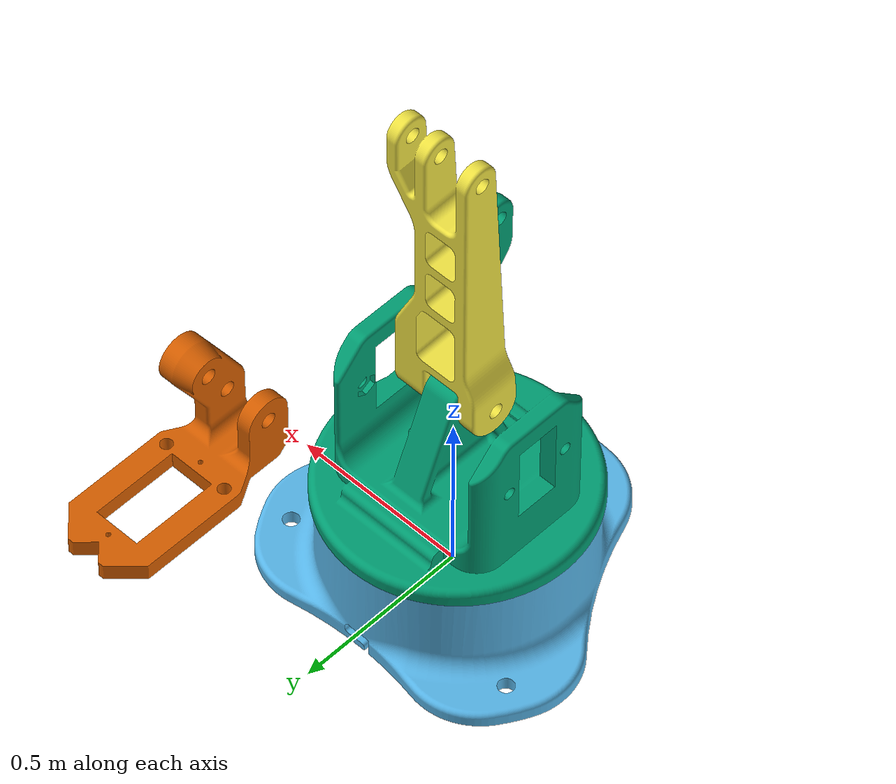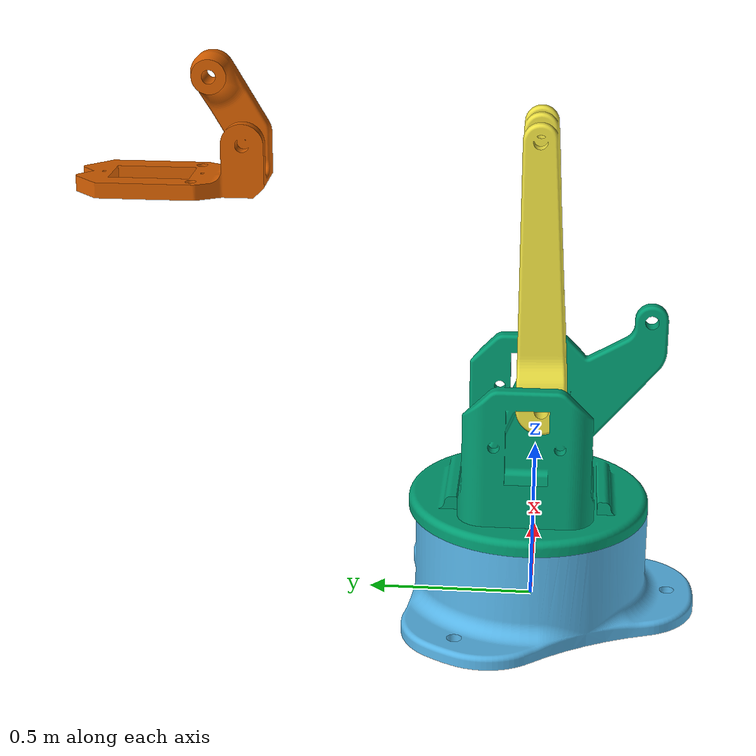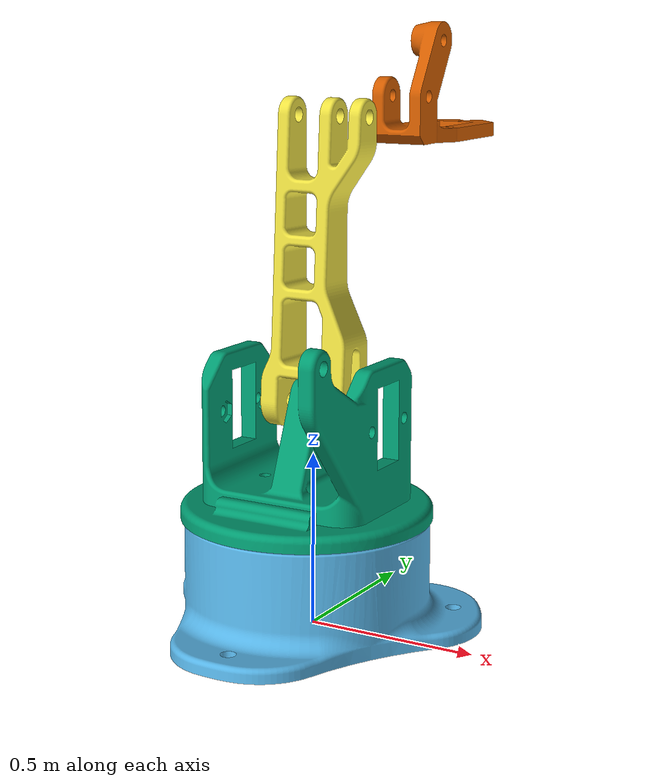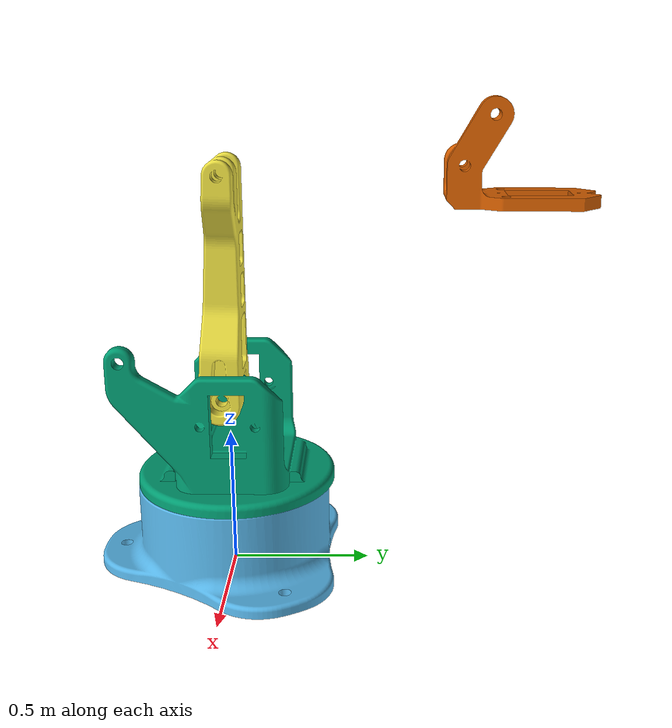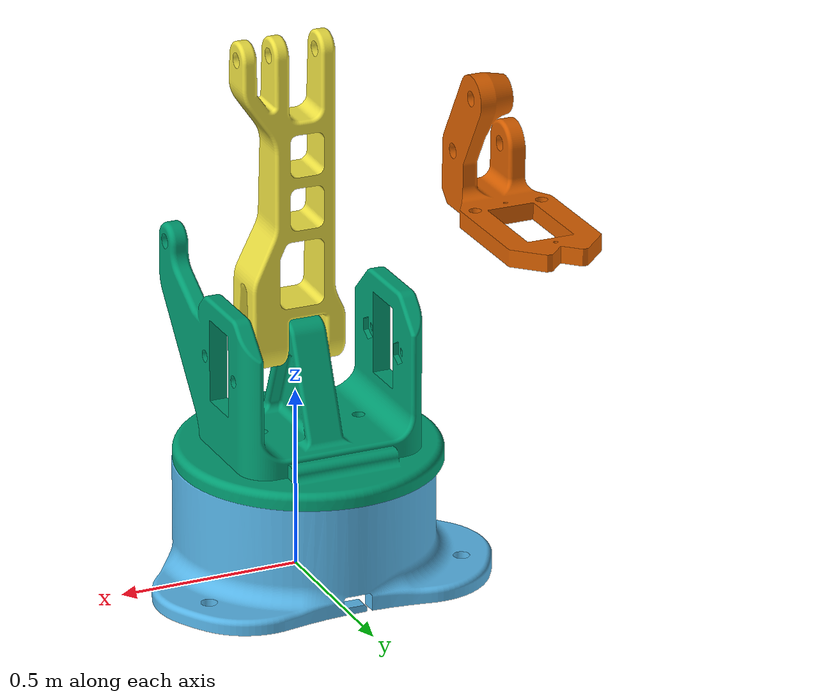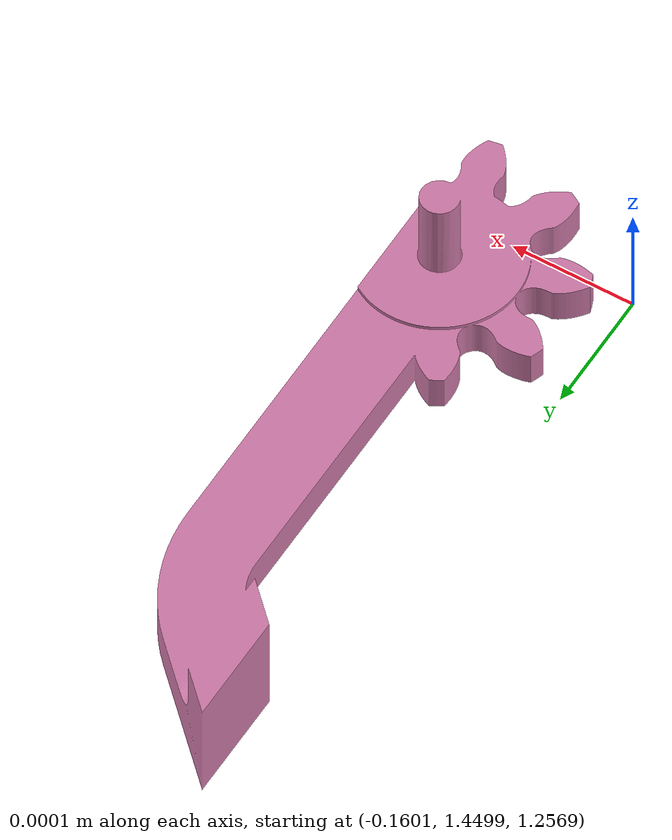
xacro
<?xml version="1.0"?>
<robot xmlns:xacro="http://www.ros.org/wiki/xacro" name="arduinobot">

    <!-- Useful Variables (Properties) -->
    <xacro:property name="PI" value="3.14159265359" />
    <xacro:property name="effort" value="30" />
    <xacro:property name="velocity" value="10" />

    <xacro:macro name="default_inertial" params="mass">
        <inertial>
            <mass value="${mass}"/>
            <inertia ixx="1.0" ixy="0.0" ixz="0.0" iyy="1.0" iyz="0.0" izz="1.0"/>
        </inertial>
    </xacro:macro>

    <xacro:macro name="default_transmission" params="number">
        <transmission name = "transmission_${number}" >
            <type>
                transmission_interface/SimpleTransmission
            </type>
            <joint name="joint_${number}">
                <hardwareInterface>hardware_interface/PositionJointInterface</hardwareInterface>
            </joint>
            <actuator name="motor_${number}">
                <hardwareInterface>hardware_interface/PositionJointInterface</hardwareInterface>
                <mechanicalReduction>1</mechanicalReduction>
            </actuator>
        </transmission>
    </xacro:macro>

    <!-- Links -->
    <link name="world"/>

    <!-- Link 1 -->
    <link name="base_link">
        <xacro:default_inertial mass = "1.0"/>
        <visual>
            <origin rpy="0 0 0" xyz="-0.5 -0.5 0"/>
            <geometry>
                <mesh filename="package://arduinobot_description/mesh/basement.STL" scale="0.01 0.01 0.01"/>
            </geometry>
        </visual>
    </link>

    <!-- Link 2 -->
    <link name="base_plate">
        <xacro:default_inertial mass = "0.1"/>
        <visual>
            <origin rpy="0 0 0" xyz="-0.39 -0.39 -0.56"/>
            <geometry>
                <mesh filename="package://arduinobot_description/mesh/base_plate.STL" scale="0.01 0.01 0.01"/>
            </geometry>
        </visual>

        <collision>
            <origin rpy="0 0 0" xyz="-0.39 -0.39 -0.56"/>
            <geometry>
                <mesh filename="package://arduinobot_description/mesh/base_plate.STL" scale="0.01 0.01 0.01"/>
            </geometry>
        </collision>
    </link>

    <!-- Link 3 -->
    <link name="forward_drive_arm">
        <xacro:default_inertial mass = "0.1"/>
        <visual>
            <origin rpy="0 -${PI/2} ${PI/2}" xyz="0.19 0.06 -0.08"/>
            <geometry>
                <mesh filename="package://arduinobot_description/mesh/forward_drive_arm.STL" scale="0.01 0.01 0.01"/>
            </geometry>
        </visual>

        <collision>
            <origin rpy="0 -${PI/2} ${PI/2}" xyz="0.19 0.06 -0.08"/>
            <geometry>
                <mesh filename="package://arduinobot_description/mesh/forward_drive_arm.STL" scale="0.01 0.01 0.01"/>
            </geometry>
        </collision>
    </link>

    <!-- Link 4 -->
    <link name="horizontal_arm">
        <xacro:default_inertial mass = "0.1"/>
        <visual>
            <origin rpy="${PI/2} 0 ${PI/2}" xyz="-0.03 -0.4 -0.06"/>
            <geometry>
                <mesh filename="package://arduinobot_description/mesh/horizontal_arm.STL" scale="0.01 0.01 0.01"/>
            </geometry>
        </visual>

        <collision>
            <origin rpy="${PI/2} 0 ${PI/2}" xyz="-0.03 -0.4 -0.06"/>
            <geometry>
                <mesh filename="package://arduinobot_description/mesh/horizontal_arm.STL" scale="0.01 0.01 0.01"/>
            </geometry>
        </collision>
    </link>

    <!-- Link 5 -->
    <link name="claw_support">
        <xacro:default_inertial mass = "0.05"/>
        <visual>
            <origin rpy="0 0 ${PI/2}" xyz="0 -0.05 -0.15"/>
            <geometry>
                <mesh filename="package://arduinobot_description/mesh/claw_support.STL" scale="0.01 0.01 0.01"/>
            </geometry>
        </visual>

        <collision>
            <origin rpy="0 0 ${PI/2}" xyz="0 -0.05 -0.15"/>
            <geometry>
                <mesh filename="package://arduinobot_description/mesh/claw_support.STL" scale="0.01 0.01 0.01"/>
            </geometry>
        </collision>
    </link>

    <!-- Link 6 -->
    <link name="gripper_right">
        <xacro:default_inertial mass = "0.01"/>
        <visual>
            <origin rpy="0 0 -${PI/2}" xyz="-0.1 0.5 -0.1"/>
            <geometry>
                <mesh filename="package://arduinobot_description/mesh/right_finger.STL" scale="0.01 0.01 0.01"/>
            </geometry>
        </visual>

        <collision>
            <origin rpy="0 0 -${PI/2}" xyz="-0.1 0.5 -0.1"/>
            <geometry>
                <mesh filename="package://arduinobot_description/mesh/right_finger.STL" scale="0.01 0.01 0.01"/>
            </geometry>
        </collision>
    </link>

    <!-- Link 7 -->
    <link name="gripper_left">
        <xacro:default_inertial mass = "0.01"/>
        <visual>
            <origin rpy="0 0 -${PI/2}" xyz="-0.04 0.5 -0.1"/>
            <geometry>
                <mesh filename="package://arduinobot_description/mesh/left_finger.STL" scale="0.01 0.01 0.01"/>
            </geometry>
        </visual>

        <collision>
            <origin rpy="0 0 -${PI/2}" xyz="-0.04 0.5 -0.1"/>
            <geometry>
                <mesh filename="package://arduinobot_description/mesh/left_finger.STL" scale="0.01 0.01 0.01"/>
            </geometry>
        </collision>
    </link>

    <!-- Link 8 -->
    <link name="tool_link"/>

    <!-- Joints -->

    <!-- Joint 1 -->
    <joint name="virtual_joint" type="fixed">
        <parent link="world"/>
        <child link="base_link"/>
        <origin xyz="0 0 0" rpy="0 0 0"/>
    </joint>

    <!-- JOint 2 -->
    <joint name ="joint_1" type="revolute">
        <parent link="base_link"/>
        <child link = "base_plate"/>
        <origin rpy="0.0 0.0 0.0" xyz="0 0 0.307"/>
        <axis xyz="0 0 1"/>
        <limit lower="-${PI/2}" upper="${PI/2}" effort="${effort}" velocity="${velocity}"/>
    </joint>

    <!-- Joint 3 -->
    <joint name ="joint_2" type="revolute">
        <parent link="base_plate"/>
        <child link = "forward_drive_arm"/>
        <origin rpy="0.0 0.0 0.0" xyz="-0.02 0 0.35"/>
        <axis xyz="1 0 0"/>
        <limit lower="-${PI/2}" upper="${PI/2}" effort="${effort}" velocity="${velocity}"/>
    </joint>

    <!-- Joint 4 -->
    <joint name ="joint_3" type="revolute">
        <parent link="forward_drive_arm"/>
        <child link = "horizontal_arm"/>
        <origin rpy="0.0 0.0 0.0" xyz="0 0 0.8"/>
        <axis xyz="1 0 0"/>
        <limit lower="-${PI/2}" upper="${PI/2}" effort="${effort}" velocity="${velocity}"/>
    </joint>

    <!-- Joint 5 -->
    <joint name ="horizontal_arm_to_claw_support" type="fixed">
        <parent link="horizontal_arm"/>
        <child link = "claw_support"/>
        <origin rpy="0.0 0.0 0.0" xyz="0 0.82 0"/>
    </joint>

    <!-- Joint 6 -->
    <joint name ="joint_4" type="revolute">
        <parent link="claw_support"/>
        <child link = "gripper_right"/>
        <origin rpy="0.0 0.0 0.0" xyz="-0.04 0.13 -0.1"/>
        <axis xyz="0 0 1"/>
        <limit lower="-${PI/2}" upper="0" effort="${effort}" velocity="${velocity}"/>
    </joint>

    <!-- Joint 7 -->
    <joint name ="joint_5" type="revolute">
        <parent link="claw_support"/>
        <child link = "gripper_left"/>
        <origin rpy="0.0 0.0 0.0" xyz="-0.2 0.13 -0.1"/>
        <axis xyz="0 0 1"/>
        <limit lower="0" upper="${PI/2}" effort="${effort}" velocity="${velocity}"/>
        <mimic joint="joint_4" offset="0" multiplier="-1"/>
    </joint>

    <!-- Joint 8 -->
    <joint name ="joint_right_to_tool" type="fixed">
        <parent link="gripper_left"/>
        <child link = "tool_link"/>
        <origin rpy="0.0 0.0 0.0" xyz="0 0 0"/>
    </joint>

    <xacro:default_transmission number="1"/>
    <xacro:default_transmission number="2"/>
    <xacro:default_transmission number="3"/>
    <xacro:default_transmission number="4"/>

    <gazebo>
        <plugin name="gazebo_ros_control" filename="libgazebo_ros_control.so">
            <robotNamespace>/arduinobot</robotNamespace>
            <robotSimType>gazebo_ros_control/DefaultRobotHWSim</robotSimType>

            <legacyModeNS>true</legacyModeNS>
        </plugin>

        <plugin name="joint_5_mimic_joint_4" filename="libroboticsgroup_gazebo_mimic_joint_plugin.so">
            <joint>joint_4</joint>
            <mimicJoint>joint_5</mimicJoint>
            <multiplier>-1.0</multiplier>
            <offset>0</offset>
            <maxEffort>${effort}</maxEffort>]
            <robotNamespace>/arduinobot</robotNamespace>
        </plugin>
    </gazebo>

</robot>
